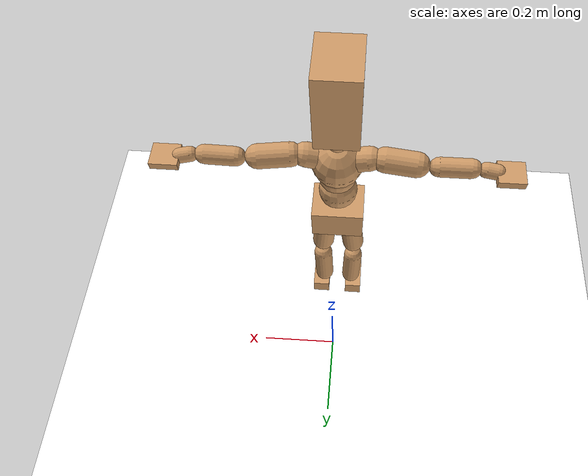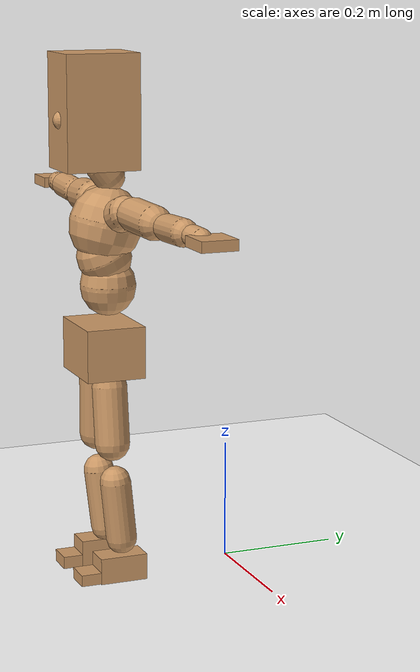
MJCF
<mujoco model="humanoid">
  <option integrator="implicitfast" />

  <visual>
    <global offwidth="1280" offheight="960" />
    <headlight active="1" ambient="0.34 0.34 0.34" diffuse="0.5 0.5 0.5" />
  </visual>

  <default>
    <joint damping="2" stiffness="2" armature="0.01" limited="true" solimplimit="0 .99 .01" />
    <geom condim="1" friction="0.7 0.005 0.0001" solimp=".99 .99 .003" solref="0.015 1" margin="0.001" rgba="0.8 0.6 .4 1" />
    <default class="smplcontact">
      <geom condim="3" friction="1. 0.005 0.0001" solref="0.015 1" solimp="0.98 0.98 0.001" priority="1" />
    </default>
    <default class="stiff_medium">
      <joint stiffness="10" />
    </default>
    <default class="stiff_medium_higher">
      <joint stiffness="50" />
    </default>
    <default class="stiff_high">
      <joint stiffness="100" />
    </default>
  </default>

  <asset>
    <texture type="skybox" builtin="gradient" rgb1="0.99 0.99 0.99" rgb2="0.608 0.828 0.892" width="100" />
    <texture builtin="flat" height="1278" mark="cross" markrgb="1 1 1" name="texgeom" random="0.01" rgb1="0.8 0.6 0.4" rgb2="0.8 0.6 0.4" type="cube" width="127" />
    <texture name="texplane" type="2d" builtin="checker" markrgb="1 1 1" rgb1="0.756 0.772 0.76" rgb2="0.6 0.6 0.6" width="100" height="100" />
    <material name="MatPlane" reflectance="0.5" texture="texplane" texrepeat="1 1" texuniform="true" />
    <material name="geom" texture="texgeom" texuniform="true" />
  </asset>

  <worldbody>
    <light name="tracking_light" pos="0 0 7" dir="0 0 -1" directional="true" cutoff="100" exponent="1" diffuse="1 1 1" specular="0.1 0.1 0.1" mode="trackcom" />
    <camera name="back" pos="0 3 2.4" xyaxes="-1 0 0 0 -1 2" mode="trackcom" />
    <camera name="side" pos="-3 0 2.4" xyaxes="0 -1 0 1 0 2" mode="trackcom" />
    <camera name="front_side" pos="-2.8 -2.8 0.8" xyaxes="0.5 -0.5 0 0.1 0.1 1" mode="trackcom" />
    <geom condim="3" name="floor" pos="0 0 0" rgba="1 1 1 1" size="100 100 .2" type="plane" material="MatPlane" />
    <body name="Pelvis" pos="-0.0018 -0.2233 0.398769" euler="90 0 0">
      <site name="Pelvis" size="0.01" />
      <freejoint name="Pelvis" />
      <geom type="box" pos="-0.0000 -0.0121 -0.0055" size="0.0638789 0.0431436 0.0495973" quat="1.0000 0.0000 0.0000 0.0000" density="3165.830099" name="Pelvis" />
      <body name="L_Hip" pos="0.0294129 -0.0386811 -0.0028778">
        <joint name="L_Hip_x" type="hinge" pos="0 0 0" axis="1 0 0" stiffness="10" range="-160.0 22.92" class="stiff_medium" damping="15" />
        <joint name="L_Hip_y" type="hinge" pos="0 0 0" axis="0 1 0" stiffness="10" range="-70.0 70.0" class="stiff_medium" damping="10" />
        <joint name="L_Hip_z" type="hinge" pos="0 0 0" axis="0 0 1" stiffness="10" range="-28.65 90.0" class="stiff_medium" damping="10" />
        <geom type="capsule" density="2040.816327" fromto="0.00292012 -0.0317405 -0.000380886 0.0115959 -0.127047 -0.00152354" size="0.029053" name="L_Hip" />
        <body name="L_Knee" pos="0.014516 -0.158787 -0.00190443">
          <joint name="L_Knee_x" type="hinge" pos="0 0 0" axis="1 0 0" range="-5.16 171.89" damping="8" />
          <joint name="L_Knee_y" type="hinge" pos="0 0 0" axis="0 1 0" range="-4.58 6.88" damping="8" />
          <joint name="L_Knee_z" type="hinge" pos="0 0 0" axis="0 0 1" range="-6.88 4.58" damping="8" />
          <geom type="capsule" density="1234.567901" fromto="-0.00114266 -0.0336872 -0.0036819 -0.00461295 -0.134749 -0.0148122" size="0.0255572" name="L_Knee" />
          <body name="L_Ankle" pos="-0.00575561 -0.168436 -0.0184941">
            <joint name="L_Ankle_x" type="hinge" pos="0 0 0" axis="1 0 0" range="-45.84 45.84" class="stiff_medium" damping="6" />
            <joint name="L_Ankle_y" type="hinge" pos="0 0 0" axis="0 1 0" range="-74.48 22.92" class="stiff_medium" damping="3" />
            <joint name="L_Ankle_z" type="hinge" pos="0 0 0" axis="0 0 1" range="-4.58 4.58" class="stiff_medium" damping="6" />
            <geom type="box" pos="0.00986071 -0.0101146 0.0102416" size="0.0228172 0.0219196 0.0401545" quat="1.0000 0.0000 0.0000 0.0000" density="449.071558" name="L_Ankle" class="smplcontact" />
            <body name="L_Toe" pos="0.0111727 -0.0236149 0.0504885">
              <joint name="L_Toe_x" type="hinge" pos="0 0 0" axis="1 0 0" range="-91.67 22.92" />
              <joint name="L_Toe_y" type="hinge" pos="0 0 0" axis="0 1 0" range="-4.58 4.58" />
              <joint name="L_Toe_z" type="hinge" pos="0 0 0" axis="0 0 1" range="-4.58 4.58" />
              <geom type="box" pos="-0.00126962 0.00232764 0.0104955" size="0.022581 0.00944812 0.0234313" quat="1.0000 0.0000 0.0000 0.0000" density="423.206892" name="L_Toe" class="smplcontact" />
            </body>
          </body>
        </body>
      </body>
      <body name="R_Hip" pos="-0.0286511 -0.0383002 -0.00181979">
        <joint name="R_Hip_x" type="hinge" pos="0 0 0" axis="1 0 0" stiffness="10" range="-160.0 22.92" class="stiff_medium" damping="15" />
        <joint name="R_Hip_y" type="hinge" pos="0 0 0" axis="0 1 0" stiffness="10" range="-70.0 70.0" class="stiff_medium" damping="10" />
        <joint name="R_Hip_z" type="hinge" pos="0 0 0" axis="0 0 1" stiffness="10" range="-90.0 28.65" class="stiff_medium" damping="10" />
        <geom type="capsule" density="2040.816327" fromto="-0.00325869 -0.0323753 -0.000761772 -0.0129501 -0.129544 -0.00300477" size="0.0286278" name="R_Hip" />
        <body name="R_Knee" pos="-0.0162088 -0.161919 -0.00376654">
          <joint name="R_Knee_x" type="hinge" pos="0 0 0" axis="1 0 0" range="-5.16 171.89" damping="8" />
          <joint name="R_Knee_y" type="hinge" pos="0 0 0" axis="0 1 0" range="-6.88 4.58" damping="8" />
          <joint name="R_Knee_z" type="hinge" pos="0 0 0" axis="0 0 1" range="-4.58 6.88" damping="8" />
          <geom type="capsule" density="1234.567901" fromto="0.00135426 -0.0337296 -0.00359726 0.0053324 -0.134876 -0.0143044" size="0.0255572" name="R_Knee" />
          <body name="R_Ankle" pos="0.00668666 -0.168605 -0.0179016">
            <joint name="R_Ankle_x" type="hinge" pos="0 0 0" axis="1 0 0" range="-45.84 45.84" class="stiff_medium" damping="6" />
            <joint name="R_Ankle_y" type="hinge" pos="0 0 0" axis="0 1 0" range="-22.92 74.48" class="stiff_medium" damping="3" />
            <joint name="R_Ankle_z" type="hinge" pos="0 0 0" axis="0 0 1" range="-4.58 4.58" class="stiff_medium" damping="6" />
            <geom type="box" pos="-0.00897198 -0.00736379 0.0108341" size="0.0228172 0.022581 0.0408631" quat="1.0000 0.0000 0.0000 0.0000" density="434.700981" name="R_Ankle" class="smplcontact" />
            <body name="R_Toe" pos="-0.0107494 -0.0203562 0.0521814">
              <joint name="R_Toe_x" type="hinge" pos="0 0 0" axis="1 0 0" range="-91.67 22.92" />
              <joint name="R_Toe_y" type="hinge" pos="0 0 0" axis="0 1 0" range="-4.58 4.58" />
              <joint name="R_Toe_z" type="hinge" pos="0 0 0" axis="0 0 1" range="-4.58 4.58" />
              <geom type="box" pos="0.00177747 0.00190443 0.00960679" size="0.0226282 0.010204 0.0232896" quat="1.0000 0.0000 0.0000 0.0000" density="407.384095" name="R_Toe" class="smplcontact" />
            </body>
          </body>
        </body>
      </body>
      <body name="Torso" pos="-0.00129357 0.0563998 -0.0138154">
        <joint name="Torso_x" type="hinge" pos="0 0 0" axis="1 0 0" range="-25.78 57.3" class="stiff_medium" damping="15" />
        <joint name="Torso_y" type="hinge" pos="0 0 0" axis="0 1 0" range="-57.3 57.3" class="stiff_high" damping="20" />
        <joint name="Torso_z" type="hinge" pos="0 0 0" axis="0 0 1" range="-34.38 34.38" class="stiff_high" damping="20" />
        <geom type="capsule" density="2040.816327" fromto="0.00129357 0.0314597 0.000258715 0.00155229 0.038445 0.000310458" size="0.0459522" name="Torso" />
        <body name="Spine" pos="0.00284586 0.0699564 0.000569172">
          <joint name="Spine_x" type="hinge" pos="0 0 0" axis="1 0 0" stiffness="10" range="-25.78 57.3" class="stiff_medium" damping="15" />
          <joint name="Spine_y" type="hinge" pos="0 0 0" axis="0 1 0" stiffness="10" range="-57.3 57.3" class="stiff_high" damping="8" />
          <joint name="Spine_z" type="hinge" pos="0 0 0" axis="0 0 1" stiffness="20" range="-34.38 34.38" class="stiff_high" damping="12" />
          <geom type="capsule" density="2040.816327" fromto="0.000362201 0.0123148 0.00589869 0.000413943 0.0150572 0.00724401" size="0.0451156" name="Spine" />
          <body name="Chest" pos="0.000776144 0.027372 0.0131427">
            <joint name="Chest_x" type="hinge" pos="0 0 0" axis="1 0 0" stiffness="10" range="-25.78 57.3" class="stiff_medium" damping="15" />
            <joint name="Chest_y" type="hinge" pos="0 0 0" axis="0 1 0" stiffness="10" range="-57.3 57.3" class="stiff_high" damping="8" />
            <joint name="Chest_z" type="hinge" pos="0 0 0" axis="0 0 1" stiffness="20" range="-34.38 34.38" class="stiff_high" damping="12" />
            <geom type="capsule" density="2040.816327" fromto="-0.000465686 0.0352887 -0.00895153 -0.000517429 0.0431019 -0.0109695" size="0.0598752" name="Chest" />
            <body name="Neck" pos="-0.0014488 0.110678 -0.0221977">
              <joint name="Neck_x" type="hinge" pos="0 0 0" axis="1 0 0" range="-28.65 57.3" class="stiff_medium_higher" damping="10" />
              <joint name="Neck_y" type="hinge" pos="0 0 0" axis="0 1 0" range="-40.11 40.11" class="stiff_medium_higher" damping="10" />
              <joint name="Neck_z" type="hinge" pos="0 0 0" axis="0 0 1" range="-40.11 40.11" class="stiff_medium_higher" damping="10" />
              <geom type="capsule" density="1000" fromto="0.000517429 0.00672658 0.00532952 0.00212146 0.0269063 0.0212663" size="0.0260535" name="Neck" />
              <body name="Head" pos="0.00386402 0.0483003 0.0381201">
                <joint name="Head_x" type="hinge" pos="0 0 0" axis="1 0 0" range="-28.65 57.3" class="stiff_medium_higher" damping="2" />
                <joint name="Head_y" type="hinge" pos="0 0 0" axis="0 1 0" range="-40.11 40.11" class="stiff_medium_higher" damping="2" />
                <joint name="Head_z" type="hinge" pos="0 0 0" axis="0 0 1" range="-40.11 40.11" class="stiff_medium_higher" damping="2" />
                <geom type="box" pos="-0.00312094 0.0650939 -0.00861974" size="0.0491392 0.0935754 0.0616268" quat="1.0000 0.0000 0.0000 0.0000" density="1018.069894" name="Head" />
                <geom type="capsule" name="nose" size="0.0162176 0.00810878" pos="0 0.0520157 0.0371541" quat="1 0 0 0" mass="0" contype="0" conaffinity="0" />
              </body>
            </body>
            <body name="L_Thorax" pos="0.0362412 0.0559714 -0.015683">
              <joint name="L_Thorax_x" type="hinge" pos="0 0 0" axis="1 0 0" range="-10.89 4.58" class="stiff_medium_higher" damping="20" />
              <joint name="L_Thorax_y" type="hinge" pos="0 0 0" axis="0 1 0" range="-28.65 17.19" class="stiff_medium_higher" damping="20" />
              <joint name="L_Thorax_z" type="hinge" pos="0 0 0" axis="0 0 1" range="-31.51 40.11" class="stiff_medium_higher" damping="20" />
              <geom type="capsule" density="1000" fromto="0.00837042 0.00280547 -0.000827844 0.0334817 0.0112219 -0.00326538" size="0.0279875" name="L_Thorax" />
              <body name="L_Shoulder" pos="0.0418521 0.0140274 -0.00409323">
                <joint name="L_Shoulder_x" type="hinge" pos="0 0 0" axis="1 0 0" range="-97.4 97.4" class="stiff_medium" damping="6" />
                <joint name="L_Shoulder_y" type="hinge" pos="0 0 0" axis="0 1 0" range="-108.86 80.21" class="stiff_medium" damping="6" />
                <joint name="L_Shoulder_z" type="hinge" pos="0 0 0" axis="0 0 1" range="-97.4 85.94" class="stiff_medium" damping="6" />
                <geom type="capsule" density="1000" fromto="0.0238695 -0.00119577 -0.00252952 0.095524 -0.00469111 -0.0101181" size="0.0277726" name="L_Shoulder" />
                <body name="L_Elbow" pos="0.119393 -0.00588689 -0.0126476">
                  <joint name="L_Elbow_x" type="hinge" pos="0 0 0" axis="1 0 0" range="-17.19 4.58" damping="5" />
                  <joint name="L_Elbow_y" type="hinge" pos="0 0 0" axis="0 1 0" range="-180.0 17.19" damping="5" />
                  <joint name="L_Elbow_z" type="hinge" pos="0 0 0" axis="0 0 1" range="-100.84 4.58" damping="5" />
                  <geom type="capsule" density="1000" fromto="0.0229037 0.000827844 -9.19826e-05 0.0917067 0.00331138 -0.000413922" size="0.0217561" name="L_Elbow" />
                  <body name="L_Wrist" pos="0.11461 0.00413922 -0.000551896">
                    <joint name="L_Wrist_x" type="hinge" pos="0 0 0" axis="1 0 0" range="-180.0 22.92" />
                    <joint name="L_Wrist_y" type="hinge" pos="0 0 0" axis="0 1 0" range="-17.19 17.19" />
                    <joint name="L_Wrist_z" type="hinge" pos="0 0 0" axis="0 0 1" range="-22.92 22.92" />
                    <geom type="capsule" density="1000" fromto="0.00772654 -0.000735861 -0.00137974 0.0309062 -0.00298944 -0.00551896" size="0.0170826" name="L_Wrist" class="smplcontact" />
                    <body name="L_Hand" pos="0.0386327 -0.00377129 -0.00685271">
                      <joint name="L_Hand_x" type="hinge" pos="0 0 0" axis="1 0 0" range="-17.19 17.19" />
                      <joint name="L_Hand_y" type="hinge" pos="0 0 0" axis="0 1 0" range="-51.57 51.57" />
                      <joint name="L_Hand_z" type="hinge" pos="0 0 0" axis="0 0 1" range="-91.67 91.67" />
                      <geom type="box" pos="0.0226737 0.000459913 -0.0026675" size="0.0314255 0.00848757 0.0289007" quat="1.0000 0.0000 0.0000 0.0000" density="400.552564" name="L_Hand" class="smplcontact" />
                    </body>
                  </body>
                </body>
              </body>
            </body>
            <body name="R_Thorax" pos="-0.0376209 0.0546377 -0.0177527">
              <joint name="R_Thorax_x" type="hinge" pos="0 0 0" axis="1 0 0" range="-10.89 4.58" class="stiff_medium_higher" damping="20" />
              <joint name="R_Thorax_y" type="hinge" pos="0 0 0" axis="0 1 0" range="-17.19 28.65" class="stiff_medium_higher" damping="20" />
              <joint name="R_Thorax_z" type="hinge" pos="0 0 0" axis="0 0 1" range="-40.11 31.51" class="stiff_medium_higher" damping="20" />
              <geom type="capsule" density="1000" fromto="-0.00883033 0.00298944 -0.000827844 -0.0353213 0.0119577 -0.00335737" size="0.0274503" name="R_Thorax" />
              <body name="R_Shoulder" pos="-0.0441517 0.0149932 -0.00418521">
                <joint name="R_Shoulder_x" type="hinge" pos="0 0 0" axis="1 0 0" range="-97.4 97.4" class="stiff_medium" damping="6" />
                <joint name="R_Shoulder_y" type="hinge" pos="0 0 0" axis="0 1 0" range="-80.21 108.86" class="stiff_medium" damping="6" />
                <joint name="R_Shoulder_z" type="hinge" pos="0 0 0" axis="0 0 1" range="-85.94 97.4" class="stiff_medium" damping="6" />
                <geom type="capsule" density="1000" fromto="-0.0233176 -0.00124177 -0.00197763 -0.0933624 -0.00492107 -0.00786452" size="0.0285247" name="R_Shoulder" />
                <body name="R_Elbow" pos="-0.11668 -0.00611685 -0.00984214">
                  <joint name="R_Elbow_x" type="hinge" pos="0 0 0" axis="1 0 0" range="-17.19 4.58" damping="5" />
                  <joint name="R_Elbow_y" type="hinge" pos="0 0 0" axis="0 1 0" range="-17.19 180.0" damping="5" />
                  <joint name="R_Elbow_z" type="hinge" pos="0 0 0" axis="0 0 1" range="-4.58 100.84" damping="5" />
                  <geom type="capsule" density="1000" fromto="-0.0235016 0.000735861 -0.000505905 -0.0939143 0.00285146 -0.00202362" size="0.0219173" name="R_Elbow" />
                  <body name="R_Wrist" pos="-0.117416 0.00358732 -0.00257551">
                    <joint name="R_Wrist_x" type="hinge" pos="0 0 0" axis="1 0 0" range="-180.0 22.92" />
                    <joint name="R_Wrist_y" type="hinge" pos="0 0 0" axis="0 1 0" range="-17.19 17.19" />
                    <joint name="R_Wrist_z" type="hinge" pos="0 0 0" axis="0 0 1" range="-22.92 22.92" />
                    <geom type="capsule" density="1000" fromto="-0.00777253 -0.000551896 -0.000965818 -0.0311361 -0.00225357 -0.00381728" size="0.0175123" name="R_Wrist" class="smplcontact" />
                    <body name="R_Hand" pos="-0.0389087 -0.00280547 -0.00473711">
                      <joint name="R_Hand_x" type="hinge" pos="0 0 0" axis="1 0 0" range="-17.19 17.19" />
                      <joint name="R_Hand_y" type="hinge" pos="0 0 0" axis="0 1 0" range="-51.57 51.57" />
                      <joint name="R_Hand_z" type="hinge" pos="0 0 0" axis="0 0 1" range="-91.67 91.67" />
                      <geom type="box" pos="-0.021248 -0.000413922 -0.00363331" size="0.030566 0.00880988 0.0293305" quat="1.0000 0.0000 0.0000 0.0000" density="403.679611" name="R_Hand" class="smplcontact" />
                    </body>
                  </body>
                </body>
              </body>
            </body>
          </body>
        </body>
      </body>
    </body>
  </worldbody>
  <actuator>
    <general name="L_Hip_x" joint="L_Hip_x" biastype="affine" gainprm="287.33006409732246" biasprm="-215.3247604770444 -180 -2.0" ctrllimited="true" ctrlrange="-1 1" forcerange="-360 360" />
    <general name="L_Hip_y" joint="L_Hip_y" biastype="affine" gainprm="219.9114857512855" biasprm="0.0 -180 -2.0" ctrllimited="true" ctrlrange="-1 1" forcerange="-360 360" />
    <general name="L_Hip_z" joint="L_Hip_z" biastype="affine" gainprm="186.3749841742145" biasprm="96.3683546488669 -180 -2.0" ctrllimited="true" ctrlrange="-1 1" forcerange="-360 360" />
    <general name="L_Knee_x" joint="L_Knee_x" biastype="affine" gainprm="278.10948965903646" biasprm="261.8988715665131 -180 -2.0" ctrllimited="true" ctrlrange="-1 1" forcerange="-360 360" />
    <general name="L_Knee_y" joint="L_Knee_y" biastype="affine" gainprm="18.001325905069514" biasprm="3.612831551628262 -180 -2.0" ctrllimited="true" ctrlrange="-1 1" forcerange="-360 360" />
    <general name="L_Knee_z" joint="L_Knee_z" biastype="affine" gainprm="18.001325905069514" biasprm="-3.612831551628262 -180 -2.0" ctrllimited="true" ctrlrange="-1 1" forcerange="-360 360" />
    <general name="L_Ankle_x" joint="L_Ankle_x" biastype="affine" gainprm="72.00530362027807" biasprm="0.0 -90 -2.0" ctrllimited="true" ctrlrange="-1 1" forcerange="-180 180" />
    <general name="L_Ankle_y" joint="L_Ankle_y" biastype="affine" gainprm="76.49778111491148" biasprm="-40.49512930477244 -90 -2.0" ctrllimited="true" ctrlrange="-1 1" forcerange="-180 180" />
    <general name="L_Ankle_z" joint="L_Ankle_z" biastype="affine" gainprm="7.1942471767206255" biasprm="0.0 -90 -2.0" ctrllimited="true" ctrlrange="-1 1" forcerange="-180 180" />
    <general name="L_Toe_x" joint="L_Toe_x" biastype="affine" gainprm="71.99902043497087" biasprm="-43.19689898685965 -72 -0.8" ctrllimited="true" ctrlrange="-1 1" forcerange="-144 144" />
    <general name="L_Toe_y" joint="L_Toe_y" biastype="affine" gainprm="5.755397741376501" biasprm="0.0 -72 -0.8" ctrllimited="true" ctrlrange="-1 1" forcerange="-144 144" />
    <general name="L_Toe_z" joint="L_Toe_z" biastype="affine" gainprm="5.755397741376501" biasprm="0.0 -72 -0.8" ctrllimited="true" ctrlrange="-1 1" forcerange="-144 144" />
    <general name="R_Hip_x" joint="R_Hip_x" biastype="affine" gainprm="287.33006409732246" biasprm="-215.3247604770444 -180 -2.0" ctrllimited="true" ctrlrange="-1 1" forcerange="-360 360" />
    <general name="R_Hip_y" joint="R_Hip_y" biastype="affine" gainprm="219.9114857512855" biasprm="0.0 -180 -2.0" ctrllimited="true" ctrlrange="-1 1" forcerange="-360 360" />
    <general name="R_Hip_z" joint="R_Hip_z" biastype="affine" gainprm="186.3749841742145" biasprm="-96.3683546488669 -180 -2.0" ctrllimited="true" ctrlrange="-1 1" forcerange="-360 360" />
    <general name="R_Knee_x" joint="R_Knee_x" biastype="affine" gainprm="278.10948965903646" biasprm="261.8988715665131 -180 -2.0" ctrllimited="true" ctrlrange="-1 1" forcerange="-360 360" />
    <general name="R_Knee_y" joint="R_Knee_y" biastype="affine" gainprm="18.001325905069514" biasprm="-3.612831551628262 -180 -2.0" ctrllimited="true" ctrlrange="-1 1" forcerange="-360 360" />
    <general name="R_Knee_z" joint="R_Knee_z" biastype="affine" gainprm="18.001325905069514" biasprm="3.612831551628262 -180 -2.0" ctrllimited="true" ctrlrange="-1 1" forcerange="-360 360" />
    <general name="R_Ankle_x" joint="R_Ankle_x" biastype="affine" gainprm="72.00530362027807" biasprm="0.0 -90 -2.0" ctrllimited="true" ctrlrange="-1 1" forcerange="-180 180" />
    <general name="R_Ankle_y" joint="R_Ankle_y" biastype="affine" gainprm="76.49778111491148" biasprm="40.49512930477244 -90 -2.0" ctrllimited="true" ctrlrange="-1 1" forcerange="-180 180" />
    <general name="R_Ankle_z" joint="R_Ankle_z" biastype="affine" gainprm="7.1942471767206255" biasprm="0.0 -90 -2.0" ctrllimited="true" ctrlrange="-1 1" forcerange="-180 180" />
    <general name="R_Toe_x" joint="R_Toe_x" biastype="affine" gainprm="71.99902043497087" biasprm="-43.19689898685965 -72 -0.8" ctrllimited="true" ctrlrange="-1 1" forcerange="-144 144" />
    <general name="R_Toe_y" joint="R_Toe_y" biastype="affine" gainprm="5.755397741376501" biasprm="0.0 -72 -0.8" ctrllimited="true" ctrlrange="-1 1" forcerange="-144 144" />
    <general name="R_Toe_z" joint="R_Toe_z" biastype="affine" gainprm="5.755397741376501" biasprm="0.0 -72 -0.8" ctrllimited="true" ctrlrange="-1 1" forcerange="-144 144" />
    <general name="Torso_x" joint="Torso_x" biastype="affine" gainprm="174.00234510682668" biasprm="66.0153336274335 -240 -4.0" ctrllimited="true" ctrlrange="-1 1" forcerange="-360 360" />
    <general name="Torso_y" joint="Torso_y" biastype="affine" gainprm="240.0176787342602" biasprm="0.0 -240 -4.0" ctrllimited="true" ctrlrange="-1 1" forcerange="-360 360" />
    <general name="Torso_z" joint="Torso_z" biastype="affine" gainprm="144.01060724055614" biasprm="0.0 -240 -4.0" ctrllimited="true" ctrlrange="-1 1" forcerange="-360 360" />
    <general name="Spine_x" joint="Spine_x" biastype="affine" gainprm="174.00234510682668" biasprm="66.0153336274335 -240 -4.0" ctrllimited="true" ctrlrange="-1 1" forcerange="-360 360" />
    <general name="Spine_y" joint="Spine_y" biastype="affine" gainprm="240.0176787342602" biasprm="0.0 -240 -4.0" ctrllimited="true" ctrlrange="-1 1" forcerange="-360 360" />
    <general name="Spine_z" joint="Spine_z" biastype="affine" gainprm="144.01060724055614" biasprm="0.0 -240 -4.0" ctrllimited="true" ctrlrange="-1 1" forcerange="-360 360" />
    <general name="Chest_x" joint="Chest_x" biastype="affine" gainprm="174.00234510682668" biasprm="66.0153336274335 -240 -4.0" ctrllimited="true" ctrlrange="-1 1" forcerange="-360 360" />
    <general name="Chest_y" joint="Chest_y" biastype="affine" gainprm="240.0176787342602" biasprm="0.0 -240 -4.0" ctrllimited="true" ctrlrange="-1 1" forcerange="-360 360" />
    <general name="Chest_z" joint="Chest_z" biastype="affine" gainprm="144.01060724055614" biasprm="0.0 -240 -4.0" ctrllimited="true" ctrlrange="-1 1" forcerange="-360 360" />
    <general name="Neck_x" joint="Neck_x" biastype="affine" gainprm="27.00198885760427" biasprm="9.000662952534757 -36 -0.8" ctrllimited="true" ctrlrange="-1 1" forcerange="-72 72" />
    <general name="Neck_y" joint="Neck_y" biastype="affine" gainprm="25.20185626709732" biasprm="0.0 -36 -0.8" ctrllimited="true" ctrlrange="-1 1" forcerange="-72 72" />
    <general name="Neck_z" joint="Neck_z" biastype="affine" gainprm="25.20185626709732" biasprm="0.0 -36 -0.8" ctrllimited="true" ctrlrange="-1 1" forcerange="-72 72" />
    <general name="Head_x" joint="Head_x" biastype="affine" gainprm="18.001325905069514" biasprm="6.000441968356505 -24 -0.8" ctrllimited="true" ctrlrange="-1 1" forcerange="-48 48" />
    <general name="Head_y" joint="Head_y" biastype="affine" gainprm="16.801237511398213" biasprm="0.0 -24 -0.8" ctrllimited="true" ctrlrange="-1 1" forcerange="-48 48" />
    <general name="Head_z" joint="Head_z" biastype="affine" gainprm="16.801237511398213" biasprm="0.0 -24 -0.8" ctrllimited="true" ctrlrange="-1 1" forcerange="-48 48" />
    <general name="L_Thorax_x" joint="L_Thorax_x" biastype="affine" gainprm="16.200146117011364" biasprm="-6.6078165480505335 -120 -1.6" ctrllimited="true" ctrlrange="-1 1" forcerange="-240 240" />
    <general name="L_Thorax_y" joint="L_Thorax_y" biastype="affine" gainprm="48.00353574685204" biasprm="-12.00088393671301 -120 -1.6" ctrllimited="true" ctrlrange="-1 1" forcerange="-240 240" />
    <general name="L_Thorax_z" joint="L_Thorax_z" biastype="affine" gainprm="75.00028861670033" biasprm="9.00589894029074 -120 -1.6" ctrllimited="true" ctrlrange="-1 1" forcerange="-240 240" />
    <general name="L_Shoulder_x" joint="L_Shoulder_x" biastype="affine" gainprm="81.5976331892389" biasprm="0.0 -48 -1.6" ctrllimited="true" ctrlrange="-1 1" forcerange="-96 96" />
    <general name="L_Shoulder_y" joint="L_Shoulder_y" biastype="affine" gainprm="79.19745640189629" biasprm="-12.00088393671301 -48 -1.6" ctrllimited="true" ctrlrange="-1 1" forcerange="-96 96" />
    <general name="L_Shoulder_z" joint="L_Shoulder_z" biastype="affine" gainprm="76.79727961455369" biasprm="-4.800353574685214 -48 -1.6" ctrllimited="true" ctrlrange="-1 1" forcerange="-96 96" />
    <general name="L_Elbow_x" joint="L_Elbow_x" biastype="affine" gainprm="13.67849441372996" biasprm="-7.923096672353461 -72 -0.8" ctrllimited="true" ctrlrange="-1 1" forcerange="-144 144" />
    <general name="L_Elbow_y" joint="L_Elbow_y" biastype="affine" gainprm="123.89813107227425" biasprm="-102.29653998619085 -72 -0.8" ctrllimited="true" ctrlrange="-1 1" forcerange="-144 144" />
    <general name="L_Elbow_z" joint="L_Elbow_z" biastype="affine" gainprm="66.23733950828719" biasprm="-60.4819417669107 -72 -0.8" ctrllimited="true" ctrlrange="-1 1" forcerange="-144 144" />
    <general name="L_Wrist_x" joint="L_Wrist_x" biastype="affine" gainprm="21.24973270888136" biasprm="-16.449379134196157 -12 -0.8" ctrllimited="true" ctrlrange="-1 1" forcerange="-24 24" />
    <general name="L_Wrist_y" joint="L_Wrist_y" biastype="affine" gainprm="3.6002651810139037" biasprm="0.0 -12 -0.8" ctrllimited="true" ctrlrange="-1 1" forcerange="-24 24" />
    <general name="L_Wrist_z" joint="L_Wrist_z" biastype="affine" gainprm="4.800353574685205" biasprm="0.0 -12 -0.8" ctrllimited="true" ctrlrange="-1 1" forcerange="-24 24" />
    <general name="L_Hand_x" joint="L_Hand_x" biastype="affine" gainprm="3.6002651810139037" biasprm="0.0 -12 -0.8" ctrllimited="true" ctrlrange="-1 1" forcerange="-24 24" />
    <general name="L_Hand_y" joint="L_Hand_y" biastype="affine" gainprm="10.800795543041708" biasprm="0.0 -12 -0.8" ctrllimited="true" ctrlrange="-1 1" forcerange="-24 24" />
    <general name="L_Hand_z" joint="L_Hand_z" biastype="affine" gainprm="19.199319903638422" biasprm="0.0 -12 -0.8" ctrllimited="true" ctrlrange="-1 1" forcerange="-24 24" />
    <general name="R_Thorax_x" joint="R_Thorax_x" biastype="affine" gainprm="16.200146117011364" biasprm="-6.6078165480505335 -120 -1.6" ctrllimited="true" ctrlrange="-1 1" forcerange="-240 240" />
    <general name="R_Thorax_y" joint="R_Thorax_y" biastype="affine" gainprm="48.00353574685204" biasprm="12.000883936713002 -120 -1.6" ctrllimited="true" ctrlrange="-1 1" forcerange="-240 240" />
    <general name="R_Thorax_z" joint="R_Thorax_z" biastype="affine" gainprm="75.00028861670033" biasprm="-9.00589894029074 -120 -1.6" ctrllimited="true" ctrlrange="-1 1" forcerange="-240 240" />
    <general name="R_Shoulder_x" joint="R_Shoulder_x" biastype="affine" gainprm="81.5976331892389" biasprm="0.0 -48 -1.6" ctrllimited="true" ctrlrange="-1 1" forcerange="-96 96" />
    <general name="R_Shoulder_y" joint="R_Shoulder_y" biastype="affine" gainprm="79.19745640189629" biasprm="12.00088393671301 -48 -1.6" ctrllimited="true" ctrlrange="-1 1" forcerange="-96 96" />
    <general name="R_Shoulder_z" joint="R_Shoulder_z" biastype="affine" gainprm="76.79727961455369" biasprm="4.800353574685204 -48 -1.6" ctrllimited="true" ctrlrange="-1 1" forcerange="-96 96" />
    <general name="R_Elbow_x" joint="R_Elbow_x" biastype="affine" gainprm="13.67849441372996" biasprm="-7.923096672353461 -72 -0.8" ctrllimited="true" ctrlrange="-1 1" forcerange="-144 144" />
    <general name="R_Elbow_y" joint="R_Elbow_y" biastype="affine" gainprm="123.89813107227425" biasprm="102.29653998619085 -72 -0.8" ctrllimited="true" ctrlrange="-1 1" forcerange="-144 144" />
    <general name="R_Elbow_z" joint="R_Elbow_z" biastype="affine" gainprm="66.23733950828719" biasprm="60.481941766910694 -72 -0.8" ctrllimited="true" ctrlrange="-1 1" forcerange="-144 144" />
    <general name="R_Wrist_x" joint="R_Wrist_x" biastype="affine" gainprm="21.24973270888136" biasprm="-16.449379134196157 -12 -0.8" ctrllimited="true" ctrlrange="-1 1" forcerange="-24 24" />
    <general name="R_Wrist_y" joint="R_Wrist_y" biastype="affine" gainprm="3.6002651810139037" biasprm="0.0 -12 -0.8" ctrllimited="true" ctrlrange="-1 1" forcerange="-24 24" />
    <general name="R_Wrist_z" joint="R_Wrist_z" biastype="affine" gainprm="4.800353574685205" biasprm="0.0 -12 -0.8" ctrllimited="true" ctrlrange="-1 1" forcerange="-24 24" />
    <general name="R_Hand_x" joint="R_Hand_x" biastype="affine" gainprm="3.6002651810139037" biasprm="0.0 -12 -0.8" ctrllimited="true" ctrlrange="-1 1" forcerange="-24 24" />
    <general name="R_Hand_y" joint="R_Hand_y" biastype="affine" gainprm="10.800795543041708" biasprm="0.0 -12 -0.8" ctrllimited="true" ctrlrange="-1 1" forcerange="-24 24" />
    <general name="R_Hand_z" joint="R_Hand_z" biastype="affine" gainprm="19.199319903638422" biasprm="0.0 -12 -0.8" ctrllimited="true" ctrlrange="-1 1" forcerange="-24 24" />
  </actuator>
  <contact>
    <exclude body1="Torso" body2="Chest" />
    <exclude body1="Head" body2="Chest" />
    <exclude body1="R_Knee" body2="R_Toe" />
    <exclude body1="R_Knee" body2="L_Ankle" />
    <exclude body1="R_Knee" body2="L_Toe" />
    <exclude body1="L_Knee" body2="L_Toe" />
    <exclude body1="L_Knee" body2="R_Ankle" />
    <exclude body1="L_Knee" body2="R_Toe" />
    <exclude body1="L_Shoulder" body2="Chest" />
    <exclude body1="R_Shoulder" body2="Chest" />
  </contact>
  <sensor>
    <framelinvel name="sensor_Pelvis_framelinvel" objtype="xbody" objname="Pelvis" />
    <framelinvel name="sensor_L_Hip_framelinvel" objtype="xbody" objname="L_Hip" />
    <framelinvel name="sensor_L_Knee_framelinvel" objtype="xbody" objname="L_Knee" />
    <framelinvel name="sensor_L_Ankle_framelinvel" objtype="xbody" objname="L_Ankle" />
    <framelinvel name="sensor_L_Toe_framelinvel" objtype="xbody" objname="L_Toe" />
    <framelinvel name="sensor_R_Hip_framelinvel" objtype="xbody" objname="R_Hip" />
    <framelinvel name="sensor_R_Knee_framelinvel" objtype="xbody" objname="R_Knee" />
    <framelinvel name="sensor_R_Ankle_framelinvel" objtype="xbody" objname="R_Ankle" />
    <framelinvel name="sensor_R_Toe_framelinvel" objtype="xbody" objname="R_Toe" />
    <framelinvel name="sensor_Torso_framelinvel" objtype="xbody" objname="Torso" />
    <framelinvel name="sensor_Spine_framelinvel" objtype="xbody" objname="Spine" />
    <framelinvel name="sensor_Chest_framelinvel" objtype="xbody" objname="Chest" />
    <framelinvel name="sensor_Neck_framelinvel" objtype="xbody" objname="Neck" />
    <framelinvel name="sensor_Head_framelinvel" objtype="xbody" objname="Head" />
    <framelinvel name="sensor_L_Thorax_framelinvel" objtype="xbody" objname="L_Thorax" />
    <framelinvel name="sensor_L_Shoulder_framelinvel" objtype="xbody" objname="L_Shoulder" />
    <framelinvel name="sensor_L_Elbow_framelinvel" objtype="xbody" objname="L_Elbow" />
    <framelinvel name="sensor_L_Wrist_framelinvel" objtype="xbody" objname="L_Wrist" />
    <framelinvel name="sensor_L_Hand_framelinvel" objtype="xbody" objname="L_Hand" />
    <framelinvel name="sensor_R_Thorax_framelinvel" objtype="xbody" objname="R_Thorax" />
    <framelinvel name="sensor_R_Shoulder_framelinvel" objtype="xbody" objname="R_Shoulder" />
    <framelinvel name="sensor_R_Elbow_framelinvel" objtype="xbody" objname="R_Elbow" />
    <framelinvel name="sensor_R_Wrist_framelinvel" objtype="xbody" objname="R_Wrist" />
    <framelinvel name="sensor_R_Hand_framelinvel" objtype="xbody" objname="R_Hand" />
    <frameangvel name="sensor_Pelvis_frameangvel" objtype="xbody" objname="Pelvis" />
    <frameangvel name="sensor_L_Hip_frameangvel" objtype="xbody" objname="L_Hip" />
    <frameangvel name="sensor_L_Knee_frameangvel" objtype="xbody" objname="L_Knee" />
    <frameangvel name="sensor_L_Ankle_frameangvel" objtype="xbody" objname="L_Ankle" />
    <frameangvel name="sensor_L_Toe_frameangvel" objtype="xbody" objname="L_Toe" />
    <frameangvel name="sensor_R_Hip_frameangvel" objtype="xbody" objname="R_Hip" />
    <frameangvel name="sensor_R_Knee_frameangvel" objtype="xbody" objname="R_Knee" />
    <frameangvel name="sensor_R_Ankle_frameangvel" objtype="xbody" objname="R_Ankle" />
    <frameangvel name="sensor_R_Toe_frameangvel" objtype="xbody" objname="R_Toe" />
    <frameangvel name="sensor_Torso_frameangvel" objtype="xbody" objname="Torso" />
    <frameangvel name="sensor_Spine_frameangvel" objtype="xbody" objname="Spine" />
    <frameangvel name="sensor_Chest_frameangvel" objtype="xbody" objname="Chest" />
    <frameangvel name="sensor_Neck_frameangvel" objtype="xbody" objname="Neck" />
    <frameangvel name="sensor_Head_frameangvel" objtype="xbody" objname="Head" />
    <frameangvel name="sensor_L_Thorax_frameangvel" objtype="xbody" objname="L_Thorax" />
    <frameangvel name="sensor_L_Shoulder_frameangvel" objtype="xbody" objname="L_Shoulder" />
    <frameangvel name="sensor_L_Elbow_frameangvel" objtype="xbody" objname="L_Elbow" />
    <frameangvel name="sensor_L_Wrist_frameangvel" objtype="xbody" objname="L_Wrist" />
    <frameangvel name="sensor_L_Hand_frameangvel" objtype="xbody" objname="L_Hand" />
    <frameangvel name="sensor_R_Thorax_frameangvel" objtype="xbody" objname="R_Thorax" />
    <frameangvel name="sensor_R_Shoulder_frameangvel" objtype="xbody" objname="R_Shoulder" />
    <frameangvel name="sensor_R_Elbow_frameangvel" objtype="xbody" objname="R_Elbow" />
    <frameangvel name="sensor_R_Wrist_frameangvel" objtype="xbody" objname="R_Wrist" />
    <frameangvel name="sensor_R_Hand_frameangvel" objtype="xbody" objname="R_Hand" />
    <subtreelinvel name="Chest_subtreelinvel" body="Chest" />
    <gyro name="Pelvis_gyro" site="Pelvis" />
  </sensor>
</mujoco>
